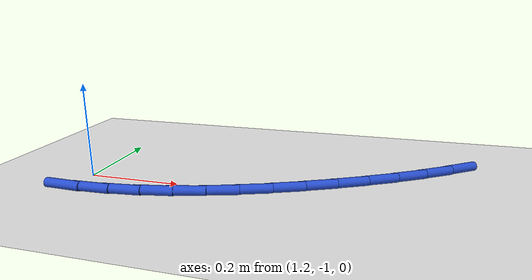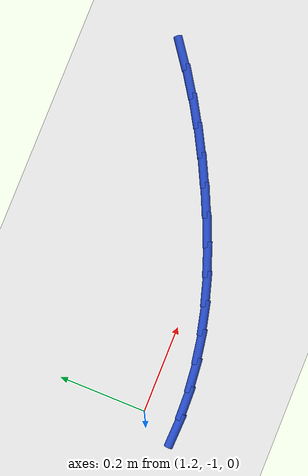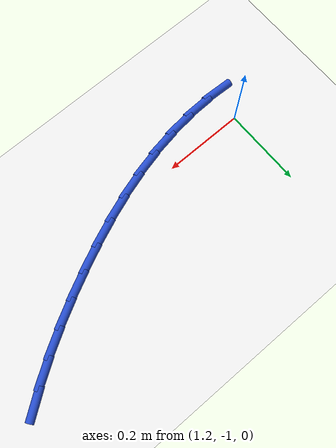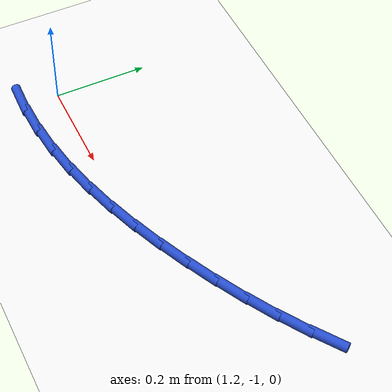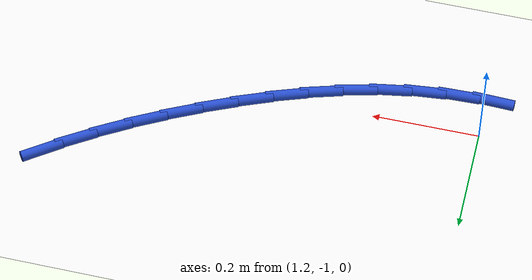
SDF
<sdf version="1.6">
 <world name="default">
  <model name="ground_plane">
   <static>1</static>
   <link name="link">
    <collision name="collision">
     <geometry><plane><normal>0 0 1</normal><size>100 100</size></plane></geometry>
     <surface><friction><ode><mu>100</mu><mu2>50</mu2></ode></friction></surface>
    </collision>
    <visual name="visual">
     <cast_shadows>0</cast_shadows>
     <geometry><plane><normal>0 0 1</normal><size>100 100</size></plane></geometry>
     <material>
      <script><uri>file://media/materials/scripts/gazebo.material</uri><name>Gazebo/WhiteGlow</name></script>
     </material>
    </visual>
   </link>
  </model>
  <model name="line">
   <link name="link_70">
    <pose>1.9734449236222393 -0.7811281366330272 0.01 0 1.57 0.6231680529620812</pose>
    <collision name="collision">
     <geometry><cylinder><radius>0.01</radius><length>0.08</length></cylinder></geometry>
    </collision>
    <visual name="visual">
     <material>
      <script><name>Gazebo/Blue</name><uri>file://media/materials/scripts/gazebo.material</uri></script>
     </material>
     <geometry><cylinder><radius>0.01</radius><length>0.08</length></cylinder></geometry>
    </visual>
   </link>
   <link name="link_71">
    <pose>1.9193564661712308 -0.820001649813614 0.01 0 1.57 0.5752682130878695</pose>
    <collision name="collision">
     <geometry><cylinder><radius>0.01</radius><length>0.08</length></cylinder></geometry>
    </collision>
    <visual name="visual">
     <material>
      <script><name>Gazebo/Blue</name><uri>file://media/materials/scripts/gazebo.material</uri></script>
     </material>
     <geometry><cylinder><radius>0.01</radius><length>0.08</length></cylinder></geometry>
    </visual>
   </link>
   <link name="link_72">
    <pose>1.8630738965451166 -0.8564967545769037 0.01 0 1.57 0.532200955365844</pose>
    <collision name="collision">
     <geometry><cylinder><radius>0.01</radius><length>0.08</length></cylinder></geometry>
    </collision>
    <visual name="visual">
     <material>
      <script><name>Gazebo/Blue</name><uri>file://media/materials/scripts/gazebo.material</uri></script>
     </material>
     <geometry><cylinder><radius>0.01</radius><length>0.08</length></cylinder></geometry>
    </visual>
   </link>
   <link name="link_73">
    <pose>1.8050583537215619 -0.8906607951775385 0.01 0 1.57 0.49337041480358107</pose>
    <collision name="collision">
     <geometry><cylinder><radius>0.01</radius><length>0.08</length></cylinder></geometry>
    </collision>
    <visual name="visual">
     <material>
      <script><name>Gazebo/Blue</name><uri>file://media/materials/scripts/gazebo.material</uri></script>
     </material>
     <geometry><cylinder><radius>0.01</radius><length>0.08</length></cylinder></geometry>
    </visual>
   </link>
   <link name="link_74">
    <pose>1.7457709766782272 -0.9225411158701616 0.01 0 1.57 0.4582406771625881</pose>
    <collision name="collision">
     <geometry><cylinder><radius>0.01</radius><length>0.08</length></cylinder></geometry>
    </collision>
    <visual name="visual">
     <material>
      <script><name>Gazebo/Blue</name><uri>file://media/materials/scripts/gazebo.material</uri></script>
     </material>
     <geometry><cylinder><radius>0.01</radius><length>0.08</length></cylinder></geometry>
    </visual>
   </link>
   <link name="link_75">
    <pose>1.6856729040817526 -0.9521850606442441 0.01 0 1.57 0.4247493321959353</pose>
    <collision name="collision">
     <geometry><cylinder><radius>0.01</radius><length>0.08</length></cylinder></geometry>
    </collision>
    <visual name="visual">
     <material>
      <script><name>Gazebo/Blue</name><uri>file://media/materials/scripts/gazebo.material</uri></script>
     </material>
     <geometry><cylinder><radius>0.01</radius><length>0.08</length></cylinder></geometry>
    </visual>
   </link>
   <link name="link_76">
    <pose>1.625136691474225 -0.9795644499646423 0.01 0 1.57 0.38646435616381214</pose>
    <collision name="collision">
     <geometry><cylinder><radius>0.01</radius><length>0.08</length></cylinder></geometry>
    </collision>
    <visual name="visual">
     <material>
      <script><name>Gazebo/Blue</name><uri>file://media/materials/scripts/gazebo.material</uri></script>
     </material>
     <geometry><cylinder><radius>0.01</radius><length>0.08</length></cylinder></geometry>
    </visual>
   </link>
   <link name="link_77">
    <pose>1.5641965892099434 -1.004362674639793 0.01 0 1.57 0.341671545228763</pose>
    <collision name="collision">
     <geometry><cylinder><radius>0.01</radius><length>0.08</length></cylinder></geometry>
    </collision>
    <visual name="visual">
     <material>
      <script><name>Gazebo/Blue</name><uri>file://media/materials/scripts/gazebo.material</uri></script>
     </material>
     <geometry><cylinder><radius>0.01</radius><length>0.08</length></cylinder></geometry>
    </visual>
   </link>
   <link name="link_78">
    <pose>1.5028060985114817 -1.0261942809993638 0.01 0 1.57 0.2901713523904114</pose>
    <collision name="collision">
     <geometry><cylinder><radius>0.01</radius><length>0.08</length></cylinder></geometry>
    </collision>
    <visual name="visual">
     <material>
      <script><name>Gazebo/Blue</name><uri>file://media/materials/scripts/gazebo.material</uri></script>
     </material>
     <geometry><cylinder><radius>0.01</radius><length>0.08</length></cylinder></geometry>
    </visual>
   </link>
   <link name="link_79">
    <pose>1.440918720601415 -1.0446738153730222 0.01 0 1.57 0.2318860787406592</pose>
    <collision name="collision">
     <geometry><cylinder><radius>0.01</radius><length>0.08</length></cylinder></geometry>
    </collision>
    <visual name="visual">
     <material>
      <script><name>Gazebo/Blue</name><uri>file://media/materials/scripts/gazebo.material</uri></script>
     </material>
     <geometry><cylinder><radius>0.01</radius><length>0.08</length></cylinder></geometry>
    </visual>
   </link>
   <link name="link_80">
    <pose>1.3784879567023178 -1.0594158240904359 0.01 0 1.57 0.166932702037435</pose>
    <collision name="collision">
     <geometry><cylinder><radius>0.01</radius><length>0.08</length></cylinder></geometry>
    </collision>
    <visual name="visual">
     <material>
      <script><name>Gazebo/Blue</name><uri>file://media/materials/scripts/gazebo.material</uri></script>
     </material>
     <geometry><cylinder><radius>0.01</radius><length>0.08</length></cylinder></geometry>
    </visual>
   </link>
   <link name="link_81">
    <pose>1.3154673080367651 -1.0700348534812723 0.01 0 1.57 0.0965036506459904</pose>
    <collision name="collision">
     <geometry><cylinder><radius>0.01</radius><length>0.08</length></cylinder></geometry>
    </collision>
    <visual name="visual">
     <material>
      <script><name>Gazebo/Blue</name><uri>file://media/materials/scripts/gazebo.material</uri></script>
     </material>
     <geometry><cylinder><radius>0.01</radius><length>0.08</length></cylinder></geometry>
    </visual>
   </link>
   <link name="link_82">
    <pose>1.2518300477246331 -1.076195217030932 0.01 0 1.57 0.02705717430038828</pose>
    <collision name="collision">
     <geometry><cylinder><radius>0.01</radius><length>0.08</length></cylinder></geometry>
    </collision>
    <visual name="visual">
     <material>
      <script><name>Gazebo/Blue</name><uri>file://media/materials/scripts/gazebo.material</uri></script>
     </material>
     <geometry><cylinder><radius>0.01</radius><length>0.08</length></cylinder></geometry>
    </visual>
   </link>
   <link name="link_83">
    <pose>1.1876963222252266 -1.0779309180044792 0.01 0 1.57 -0.03859616424294936</pose>
    <collision name="collision">
     <geometry><cylinder><radius>0.01</radius><length>0.08</length></cylinder></geometry>
    </collision>
    <visual name="visual">
     <material>
      <script><name>Gazebo/Blue</name><uri>file://media/materials/scripts/gazebo.material</uri></script>
     </material>
     <geometry><cylinder><radius>0.01</radius><length>0.08</length></cylinder></geometry>
    </visual>
   </link>
  </model>
 </world>
</sdf>
